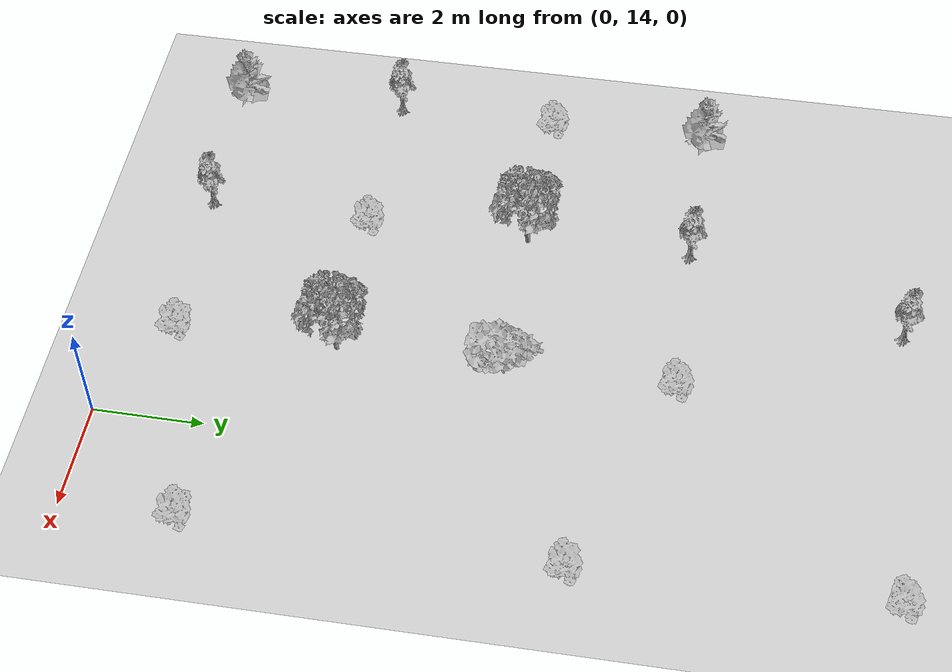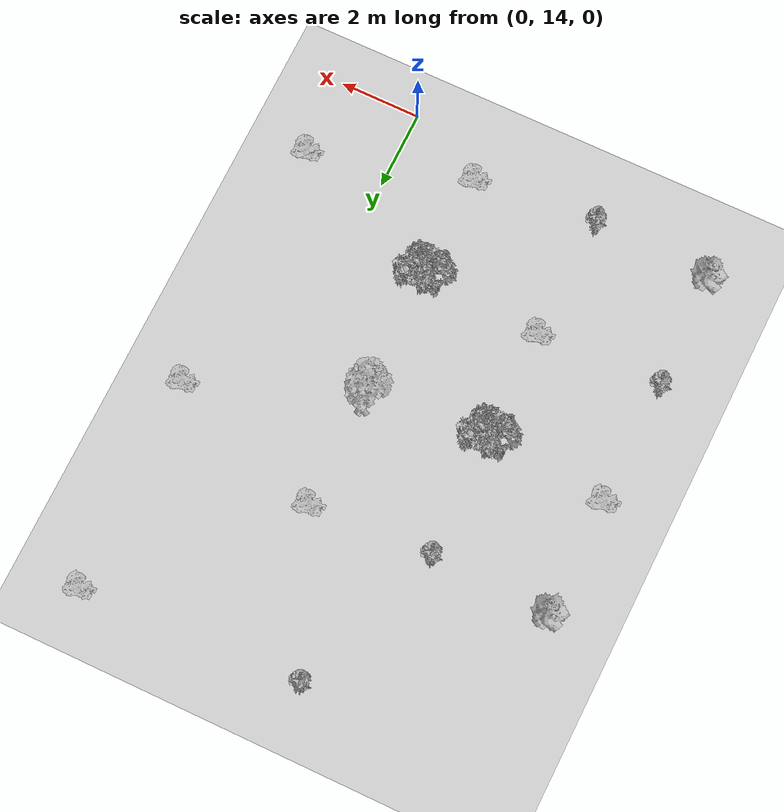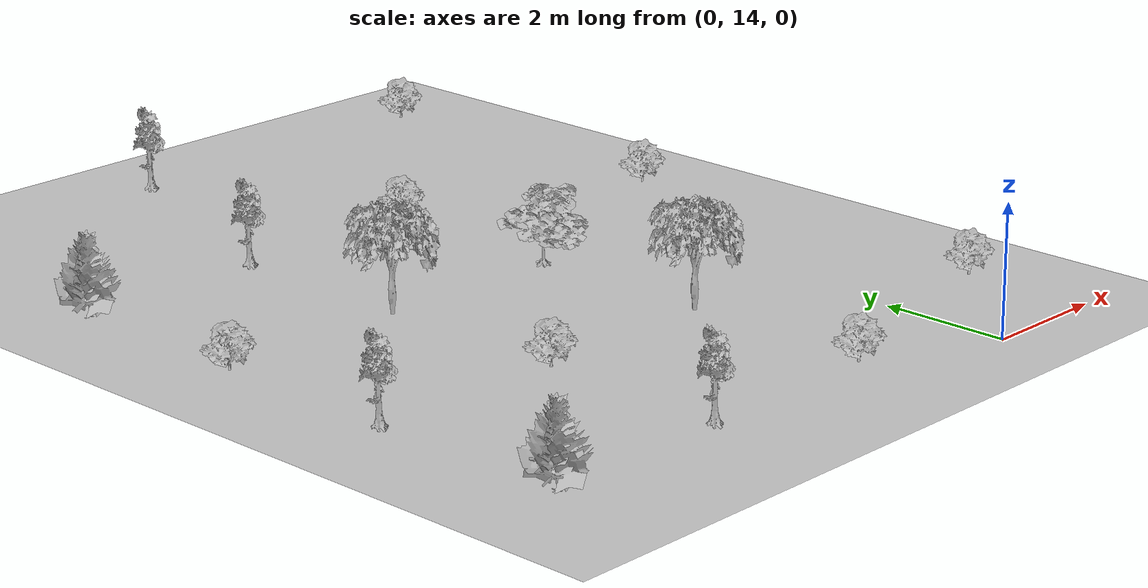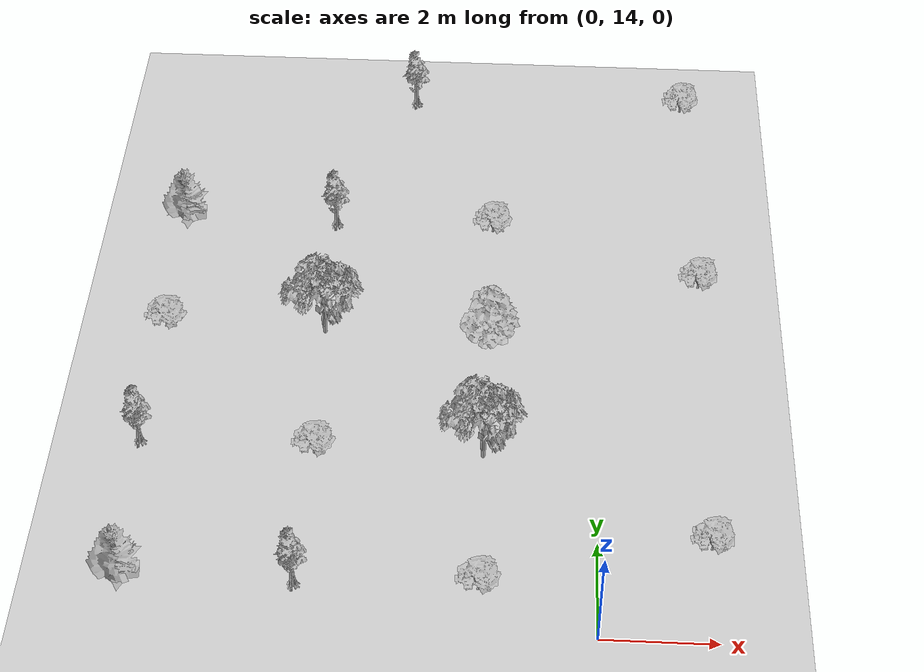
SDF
<sdf version="1.6">
 <world name="default">
  <model name="ground_plane">
   <static>1</static>
   <link name="link">
    <collision name="collision">
     <geometry><plane><normal>0 0 1</normal><size>100 100</size></plane></geometry>
     <surface>
      <contact><collide_bitmask>65535</collide_bitmask></contact>
      <friction><ode><mu>100</mu><mu2>50</mu2></ode></friction>
     </surface>
    </collision>
    <visual name="visual">
     <cast_shadows>0</cast_shadows>
     <geometry><plane><normal>0 0 1</normal><size>100 100</size></plane></geometry>
     <material>
      <script><uri>file://media/materials/scripts/gazebo.material</uri><name>Gazebo/Grey</name></script>
     </material>
    </visual>
   </link>
  </model>
  <model name="Tree 3_clone">
   <static>1</static>
   <pose>-1.97883 14.9565 0 1.57079 -0 0</pose>
   <link name="link">
    <collision name="collision">
     <geometry><mesh><scale>0.5 0.5 0.5</scale><uri>model://tree_3/meshes/tree_3.obj</uri></mesh></geometry>
    </collision>
    <visual name="visual">
     <geometry><mesh><scale>0.5 0.5 0.5</scale><uri>model://tree_3/meshes/tree_3.obj</uri></mesh></geometry>
    </visual>
   </link>
  </model>
  <model name="Tree 2 0.7_clone">
   <static>1</static>
   <pose>-2.01539 17.9105 0 1.57079 -0 0</pose>
   <link name="link">
    <collision name="collision">
     <geometry><mesh><scale>0.7 0.7 0.7</scale><uri>model://tree_2/meshes/tree_2.obj</uri></mesh></geometry>
    </collision>
    <visual name="visual">
     <geometry><mesh><scale>0.7 0.7 0.7</scale><uri>model://tree_2/meshes/tree_2.obj</uri></mesh></geometry>
    </visual>
   </link>
  </model>
  <model name="Tree 1_clone">
   <static>1</static>
   <pose>-2.03676 20.8643 0 1.57079 -0 0</pose>
   <link name="link">
    <collision name="collision">
     <geometry><mesh><scale>1.2 1.2 1.2</scale><uri>model://tree_1/meshes/tree_1.obj</uri></mesh></geometry>
    </collision>
    <visual name="visual">
     <geometry><mesh><scale>1.2 1.2 1.2</scale><uri>model://tree_1/meshes/tree_1.obj</uri></mesh></geometry>
    </visual>
   </link>
  </model>
  <model name="Tree 3_clone_clone">
   <static>1</static>
   <pose>-2.0031 23.9431 0 1.57079 -0 0</pose>
   <link name="link">
    <collision name="collision">
     <geometry><mesh><scale>0.5 0.5 0.5</scale><uri>model://tree_3/meshes/tree_3.obj</uri></mesh></geometry>
    </collision>
    <visual name="visual">
     <geometry><mesh><scale>0.5 0.5 0.5</scale><uri>model://tree_3/meshes/tree_3.obj</uri></mesh></geometry>
    </visual>
   </link>
  </model>
  <model name="Tree 4_clone">
   <static>1</static>
   <pose>-5.07078 14.8733 0 1.57079 -0 0</pose>
   <link name="link">
    <collision name="collision">
     <geometry><mesh><scale>0.3 0.3 0.3</scale><uri>model://tree_4/meshes/tree_4.obj</uri></mesh></geometry>
    </collision>
    <visual name="visual">
     <geometry><mesh><scale>0.3 0.3 0.3</scale><uri>model://tree_4/meshes/tree_4.obj</uri></mesh></geometry>
    </visual>
   </link>
  </model>
  <model name="Tree 3_clone_0">
   <static>1</static>
   <pose>-4.98787 17.8679 0 1.57079 -0 0</pose>
   <link name="link">
    <collision name="collision">
     <geometry><mesh><scale>0.5 0.5 0.5</scale><uri>model://tree_3/meshes/tree_3.obj</uri></mesh></geometry>
    </collision>
    <visual name="visual">
     <geometry><mesh><scale>0.5 0.5 0.5</scale><uri>model://tree_3/meshes/tree_3.obj</uri></mesh></geometry>
    </visual>
   </link>
  </model>
  <model name="Tree 2 0.7_clone_0">
   <static>1</static>
   <pose>-5.08 20.9065 0 1.57079 -0 0</pose>
   <link name="link">
    <collision name="collision">
     <geometry><mesh><scale>0.7 0.7 0.7</scale><uri>model://tree_2/meshes/tree_2.obj</uri></mesh></geometry>
    </collision>
    <visual name="visual">
     <geometry><mesh><scale>0.7 0.7 0.7</scale><uri>model://tree_2/meshes/tree_2.obj</uri></mesh></geometry>
    </visual>
   </link>
  </model>
  <model name="Tree 4_clone_clone">
   <static>1</static>
   <pose>-5.10363 23.9363 0 1.57079 -0 0</pose>
   <link name="link">
    <collision name="collision">
     <geometry><mesh><scale>0.3 0.3 0.3</scale><uri>model://tree_4/meshes/tree_4.obj</uri></mesh></geometry>
    </collision>
    <visual name="visual">
     <geometry><mesh><scale>0.3 0.3 0.3</scale><uri>model://tree_4/meshes/tree_4.obj</uri></mesh></geometry>
    </visual>
   </link>
  </model>
  <model name="Tree 5_clone_0">
   <static>1</static>
   <pose>-7.99684 14.8861 0 1.57079 -0 0</pose>
   <link name="link">
    <collision name="collision">
     <geometry><mesh><scale>1 1 1</scale><uri>model://tree_5/meshes/tree.obj</uri></mesh></geometry>
    </collision>
    <visual name="visual">
     <geometry><mesh><scale>1 1 1</scale><uri>model://tree_5/meshes/tree.obj</uri></mesh></geometry>
    </visual>
   </link>
  </model>
  <model name="Tree 4_clone_0">
   <static>1</static>
   <pose>-8.10739 17.9446 0 1.57079 -0 0</pose>
   <link name="link">
    <collision name="collision">
     <geometry><mesh><scale>0.3 0.3 0.3</scale><uri>model://tree_4/meshes/tree_4.obj</uri></mesh></geometry>
    </collision>
    <visual name="visual">
     <geometry><mesh><scale>0.3 0.3 0.3</scale><uri>model://tree_4/meshes/tree_4.obj</uri></mesh></geometry>
    </visual>
   </link>
  </model>
  <model name="Tree 3_clone_0_clone">
   <static>1</static>
   <pose>-8.06103 20.9368 0 1.57079 -0 0</pose>
   <link name="link">
    <collision name="collision">
     <geometry><mesh><scale>0.5 0.5 0.5</scale><uri>model://tree_3/meshes/tree_3.obj</uri></mesh></geometry>
    </collision>
    <visual name="visual">
     <geometry><mesh><scale>0.5 0.5 0.5</scale><uri>model://tree_3/meshes/tree_3.obj</uri></mesh></geometry>
    </visual>
   </link>
  </model>
  <model name="Tree 5_clone_1">
   <static>1</static>
   <pose>-8.06641 23.9567 0 1.57079 -0 0</pose>
   <link name="link">
    <collision name="collision">
     <geometry><mesh><scale>1 1 1</scale><uri>model://tree_5/meshes/tree.obj</uri></mesh></geometry>
    </collision>
    <visual name="visual">
     <geometry><mesh><scale>1 1 1</scale><uri>model://tree_5/meshes/tree.obj</uri></mesh></geometry>
    </visual>
   </link>
  </model>
  <model name="Tree 3_clone_clone_0_clone">
   <static>1</static>
   <pose>1.81835 27.9703 0 1.57079 -0 0</pose>
   <link name="link">
    <collision name="collision">
     <geometry><mesh><scale>0.5 0.5 0.5</scale><uri>model://tree_3/meshes/tree_3.obj</uri></mesh></geometry>
    </collision>
    <visual name="visual">
     <geometry><mesh><scale>0.5 0.5 0.5</scale><uri>model://tree_3/meshes/tree_3.obj</uri></mesh></geometry>
    </visual>
   </link>
  </model>
  <model name="Tree 4_clone_3_clone">
   <static>1</static>
   <pose>-3.74313 27.8932 0 1.57079 -0 0</pose>
   <link name="link">
    <collision name="collision">
     <geometry><mesh><scale>0.3 0.3 0.3</scale><uri>model://tree_4/meshes/tree_4.obj</uri></mesh></geometry>
    </collision>
    <visual name="visual">
     <geometry><mesh><scale>0.3 0.3 0.3</scale><uri>model://tree_4/meshes/tree_4.obj</uri></mesh></geometry>
    </visual>
   </link>
  </model>
  <model name="Tree 3_clone_clone_0_clone_0_clone_clone">
   <static>1</static>
   <pose>1.94827 16.0124 0 1.57079 -0 0</pose>
   <link name="link">
    <collision name="collision">
     <geometry><mesh><scale>0.5 0.5 0.5</scale><uri>model://tree_3/meshes/tree_3.obj</uri></mesh></geometry>
    </collision>
    <visual name="visual">
     <geometry><mesh><scale>0.5 0.5 0.5</scale><uri>model://tree_3/meshes/tree_3.obj</uri></mesh></geometry>
    </visual>
   </link>
  </model>
  <model name="Tree 3_clone_clone_0_clone_0_clone_clone_clone">
   <static>1</static>
   <pose>1.97199 22.5124 0 1.57079 -0 0</pose>
   <link name="link">
    <collision name="collision">
     <geometry><mesh><scale>0.5 0.5 0.5</scale><uri>model://tree_3/meshes/tree_3.obj</uri></mesh></geometry>
    </collision>
    <visual name="visual">
     <geometry><mesh><scale>0.5 0.5 0.5</scale><uri>model://tree_3/meshes/tree_3.obj</uri></mesh></geometry>
    </visual>
   </link>
  </model>
 </world>
</sdf>
